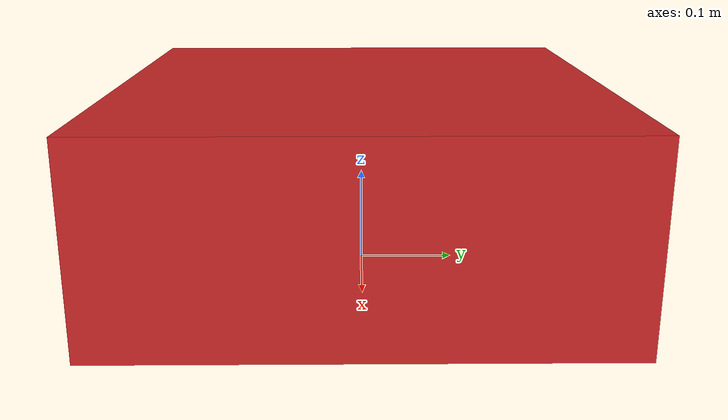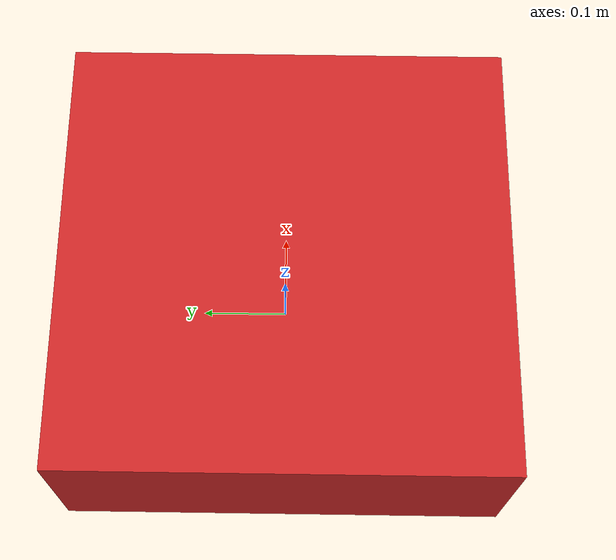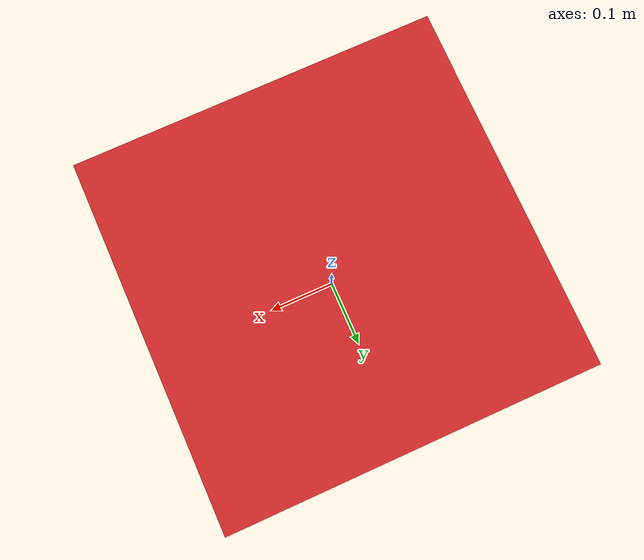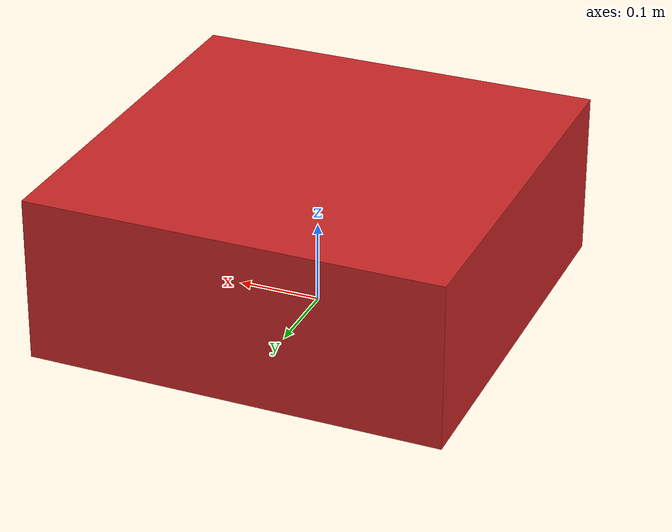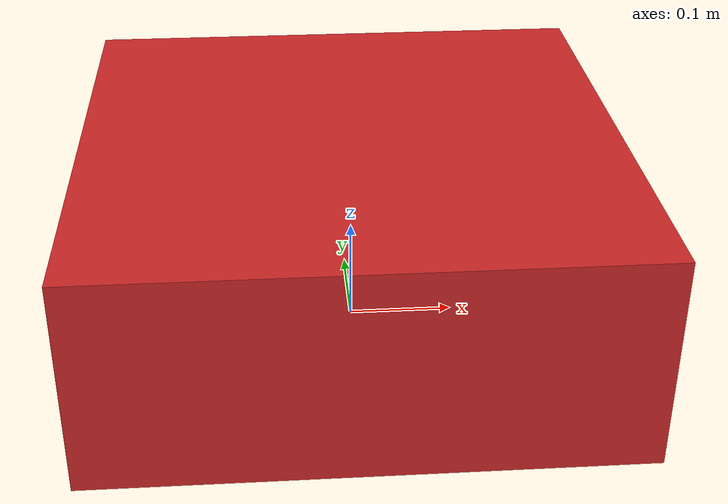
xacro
<?xml version="1.0"?>
<robot name="floating_camera"
       xmlns:xacro="http://www.ros.org/wiki/xacro">

    <!-- Constants for robot dimensions -->
    <xacro:property name="PI" value="3.1415926535897931"/>
    <xacro:property name="mass" value="1"/>
    <xacro:property name="base_width" value="0.5"/>
    <xacro:property name="base_length" value="0.5"/>
    <xacro:property name="base_height" value="0.2"/>

    <!-- Macro to add a spherical_joint_plugin. -->
    <xacro:macro name="floating_camera_plugin" params="namespace link">
        <gazebo>
            <plugin filename="libfloating_camera_plugin.so" name="floating_camera_plugin">
                <link>${link}</link>
                <namespace>${namespace}</namespace>
            </plugin>
        </gazebo>
    </xacro:macro>

    <link name="world" />

    <joint name="world_joint" type="fixed">
        <parent link="world" />
        <child link = "base_link" />
        <origin xyz="0.0 0.0 0.1" rpy="0.0 0.0 0.0" />
    </joint>

    <link name="base_link">
        <collision>
            <origin xyz="0 0 0" rpy="0 0 0"/>
            <geometry>
                <box size="${base_length} ${base_width} ${base_height}"/>
            </geometry>
        </collision>
        <visual>
            <origin xyz="0 0 0" rpy="0 0 0"/>
            <geometry>
                <box size="${base_length} ${base_width} ${base_height}"/>
            </geometry>
            <material name="red"/>
        </visual>
        <inertial>
            <origin xyz="0 0 0" rpy="0 0 0"/>
            <mass value="${mass}"/>
            <inertia ixx="0.0049" ixy="0.0000055" ixz="0.0000054" iyy="0.0053" iyz="0.000021" izz="0.0098" />
        </inertial>
    </link>

    <xacro:floating_camera_plugin namespace="floating_camera" link="base_link"/>

</robot>
